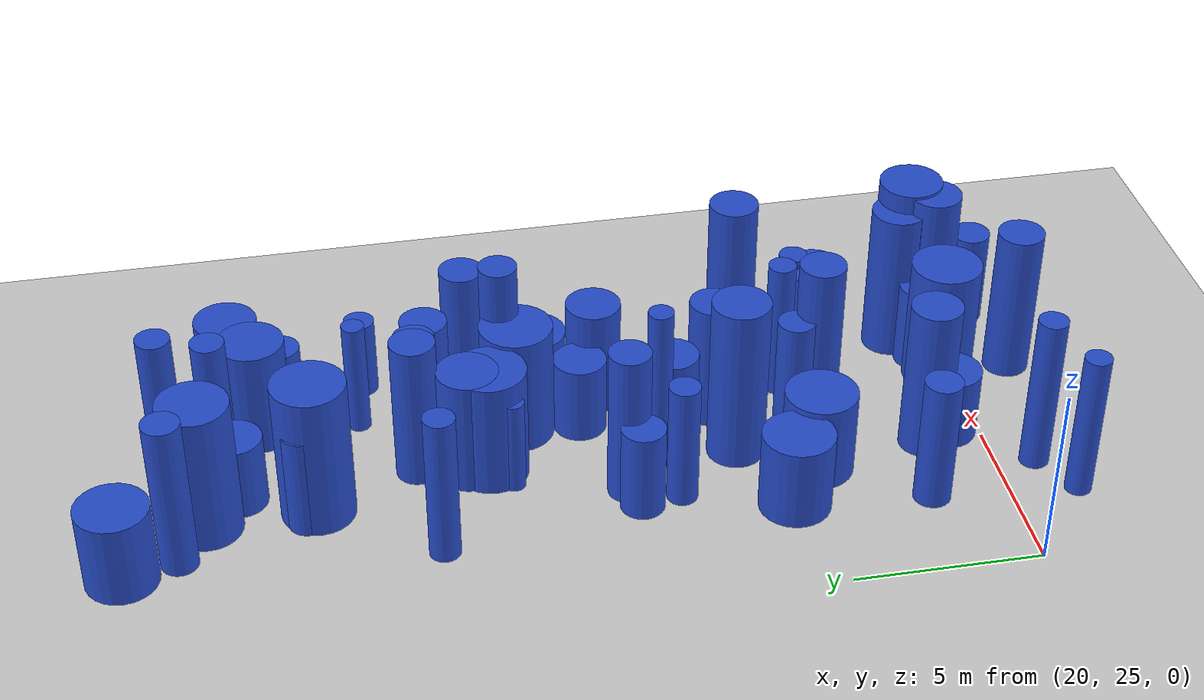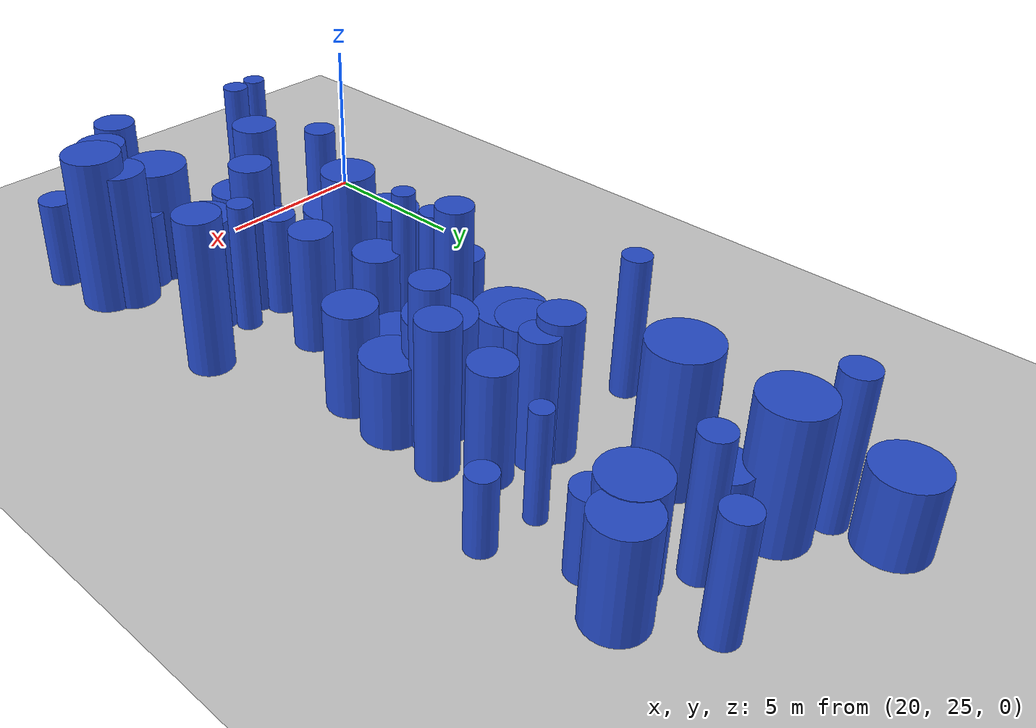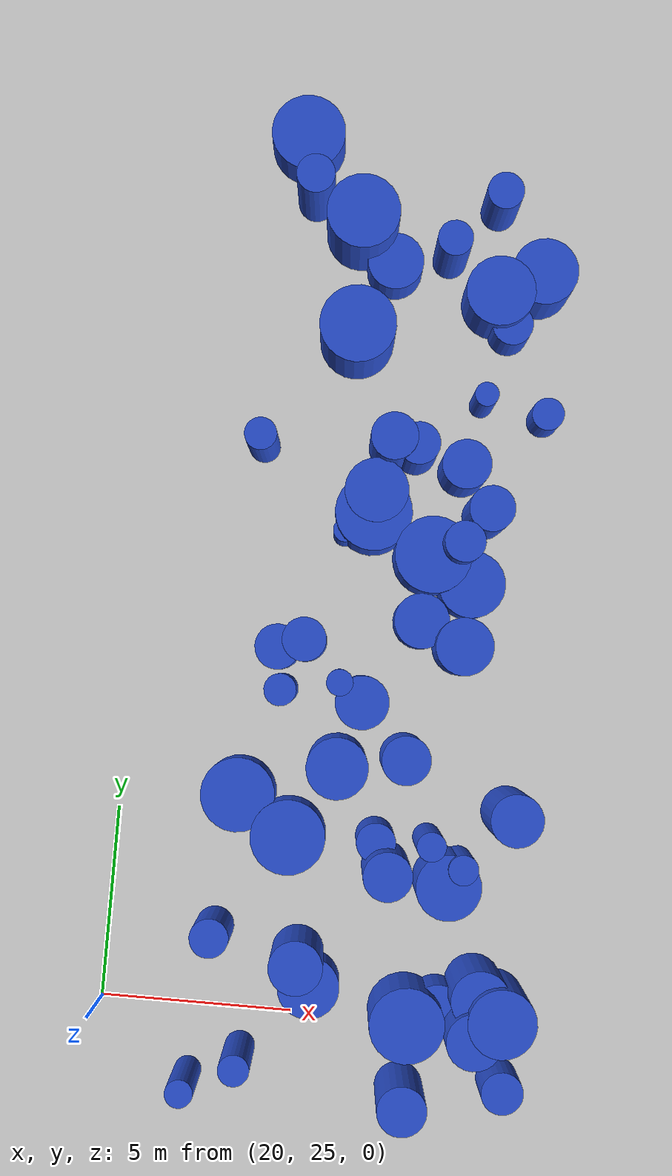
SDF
<sdf version="1.6">
 <world name="default">
  <model name="ground_plane">
   <static>1</static>
   <link name="link">
    <collision name="collision">
     <geometry><plane><normal>0 0 1</normal><size>100 100</size></plane></geometry>
     <surface><friction><ode><mu>100</mu><mu2>50</mu2></ode></friction></surface>
    </collision>
    <visual name="visual">
     <cast_shadows>0</cast_shadows>
     <geometry><plane><normal>0 0 1</normal><size>100 100</size></plane></geometry>
     <material>
      <script><uri>file://media/materials/scripts/gazebo.material</uri><name>Gazebo/Grey</name></script>
     </material>
    </visual>
   </link>
  </model>
  <model name="21">
   <static>0</static>
   <link name="link">
    <inertial>
     <mass>2</mass>
     <inertia><ixx>1.37016</ixx><ixy>0</ixy><ixz>0</ixz><iyy>1.37016</iyy><iyz>0</iyz><izz>0.921566</izz></inertia>
    </inertial>
    <collision name="collision">
     <geometry><cylinder><length>2.33587</length><radius>0.959982</radius></cylinder></geometry>
     <surface><contact><collide_without_contact>1</collide_without_contact></contact></surface>
    </collision>
    <visual name="visual">
     <geometry><cylinder><length>2.33587</length><radius>0.959982</radius></cylinder></geometry>
     <material>
      <script><uri>file://media/materials/scripts/gazebo.material</uri><name>Gazebo/Blue</name></script>
     </material>
    </visual>
    <gravity>0</gravity>
   </link>
   <pose>23.4785 47.9749 1.16793 0 -0 0</pose>
  </model>
  <model name="25">
   <static>0</static>
   <link name="link">
    <inertial>
     <mass>2</mass>
     <inertia><ixx>1.51438</ixx><ixy>0</ixy><ixz>0</ixz><iyy>1.51438</iyy><iyz>0</iyz><izz>0.951451</izz></inertia>
    </inertial>
    <collision name="collision">
     <geometry><cylinder><length>2.49638</length><radius>0.975423</radius></cylinder></geometry>
     <surface><contact><collide_without_contact>1</collide_without_contact></contact></surface>
    </collision>
    <visual name="visual">
     <geometry><cylinder><length>2.49638</length><radius>0.975423</radius></cylinder></geometry>
     <material>
      <script><uri>file://media/materials/scripts/gazebo.material</uri><name>Gazebo/Blue</name></script>
     </material>
    </visual>
    <gravity>0</gravity>
   </link>
   <pose>24.5529 29.7279 1.24819 0 -0 0</pose>
  </model>
  <model name="55">
   <static>0</static>
   <link name="link">
    <inertial>
     <mass>2</mass>
     <inertia><ixx>4.17613</ixx><ixy>0</ixy><ixz>0</ixz><iyy>4.17613</iyy><iyz>0</iyz><izz>0.615115</izz></inertia>
    </inertial>
    <collision name="collision">
     <geometry><cylinder><length>4.81782</length><radius>0.784293</radius></cylinder></geometry>
     <surface><contact><collide_without_contact>1</collide_without_contact></contact></surface>
    </collision>
    <visual name="visual">
     <geometry><cylinder><length>4.81782</length><radius>0.784293</radius></cylinder></geometry>
     <material>
      <script><uri>file://media/materials/scripts/gazebo.material</uri><name>Gazebo/Blue</name></script>
     </material>
    </visual>
    <gravity>0</gravity>
   </link>
   <pose>25.66 31.6904 2.40891 0 -0 0</pose>
  </model>
  <model name="64">
   <static>0</static>
   <link name="link">
    <inertial>
     <mass>2</mass>
     <inertia><ixx>2.8151</ixx><ixy>0</ixy><ixz>0</ixz><iyy>2.8151</iyy><iyz>0</iyz><izz>0.143102</izz></inertia>
    </inertial>
    <collision name="collision">
     <geometry><cylinder><length>4.05725</length><radius>0.378289</radius></cylinder></geometry>
     <surface><contact><collide_without_contact>1</collide_without_contact></contact></surface>
    </collision>
    <visual name="visual">
     <geometry><cylinder><length>4.05725</length><radius>0.378289</radius></cylinder></geometry>
     <material>
      <script><uri>file://media/materials/scripts/gazebo.material</uri><name>Gazebo/Blue</name></script>
     </material>
    </visual>
    <gravity>0</gravity>
   </link>
   <pose>28.212 29.9112 2.02863 0 -0 0</pose>
  </model>
  <model name="66">
   <static>0</static>
   <link name="link">
    <inertial>
     <mass>2</mass>
     <inertia><ixx>1.02189</ixx><ixy>0</ixy><ixz>0</ixz><iyy>1.02189</iyy><iyz>0</iyz><izz>0.655979</izz></inertia>
    </inertial>
    <collision name="collision">
     <geometry><cylinder><length>2.04044</length><radius>0.809925</radius></cylinder></geometry>
     <surface><contact><collide_without_contact>1</collide_without_contact></contact></surface>
    </collision>
    <visual name="visual">
     <geometry><cylinder><length>2.04044</length><radius>0.809925</radius></cylinder></geometry>
     <material>
      <script><uri>file://media/materials/scripts/gazebo.material</uri><name>Gazebo/Blue</name></script>
     </material>
    </visual>
    <gravity>0</gravity>
   </link>
   <pose>25.4223 25.8703 1.02022 0 -0 0</pose>
  </model>
  <model name="85">
   <static>0</static>
   <link name="link">
    <inertial>
     <mass>2</mass>
     <inertia>
      <ixx>1.86972</ixx>
      <ixy>0</ixy>
      <ixz>0</ixz>
      <iyy>1.86972</iyy>
      <iyz>0</iyz>
      <izz>0.0966798</izz>
     </inertia>
    </inertial>
    <collision name="collision">
     <geometry><cylinder><length>3.3058</length><radius>0.310934</radius></cylinder></geometry>
     <surface><contact><collide_without_contact>1</collide_without_contact></contact></surface>
    </collision>
    <visual name="visual">
     <geometry><cylinder><length>3.3058</length><radius>0.310934</radius></cylinder></geometry>
     <material>
      <script><uri>file://media/materials/scripts/gazebo.material</uri><name>Gazebo/Blue</name></script>
     </material>
    </visual>
    <gravity>0</gravity>
   </link>
   <pose>28.6384 41.4906 1.6529 0 -0 0</pose>
  </model>
  <model name="95">
   <static>0</static>
   <link name="link">
    <inertial>
     <mass>2</mass>
     <inertia><ixx>2.47451</ixx><ixy>0</ixy><ixz>0</ixz><iyy>2.47451</iyy><iyz>0</iyz><izz>0.401663</izz></inertia>
    </inertial>
    <collision name="collision">
     <geometry><cylinder><length>3.69352</length><radius>0.633769</radius></cylinder></geometry>
     <surface><contact><collide_without_contact>1</collide_without_contact></contact></surface>
    </collision>
    <visual name="visual">
     <geometry><cylinder><length>3.69352</length><radius>0.633769</radius></cylinder></geometry>
     <material>
      <script><uri>file://media/materials/scripts/gazebo.material</uri><name>Gazebo/Blue</name></script>
     </material>
    </visual>
    <gravity>0</gravity>
   </link>
   <pose>27.3993 32.0026 1.84676 0 -0 0</pose>
  </model>
  <model name="106">
   <static>0</static>
   <link name="link">
    <inertial>
     <mass>2</mass>
     <inertia>
      <ixx>0.993795</ixx>
      <ixy>0</ixy>
      <ixz>0</ixz>
      <iyy>0.993795</iyy>
      <iyz>0</iyz>
      <izz>0.535532</izz>
     </inertia>
    </inertial>
    <collision name="collision">
     <geometry><cylinder><length>2.08715</length><radius>0.7318</radius></cylinder></geometry>
     <surface><contact><collide_without_contact>1</collide_without_contact></contact></surface>
    </collision>
    <visual name="visual">
     <geometry><cylinder><length>2.08715</length><radius>0.7318</radius></cylinder></geometry>
     <material>
      <script><uri>file://media/materials/scripts/gazebo.material</uri><name>Gazebo/Blue</name></script>
     </material>
    </visual>
    <gravity>0</gravity>
   </link>
   <pose>26.0287 44.8688 1.04357 0 -0 0</pose>
  </model>
  <model name="108">
   <static>0</static>
   <link name="link">
    <inertial>
     <mass>2</mass>
     <inertia>
      <ixx>1.28147</ixx>
      <ixy>0</ixy>
      <ixz>0</ixz>
      <iyy>1.28147</iyy>
      <iyz>0</iyz>
      <izz>0.0907902</izz>
     </inertia>
    </inertial>
    <collision name="collision">
     <geometry><cylinder><length>2.72332</length><radius>0.301314</radius></cylinder></geometry>
     <surface><contact><collide_without_contact>1</collide_without_contact></contact></surface>
    </collision>
    <visual name="visual">
     <geometry><cylinder><length>2.72332</length><radius>0.301314</radius></cylinder></geometry>
     <material>
      <script><uri>file://media/materials/scripts/gazebo.material</uri><name>Gazebo/Blue</name></script>
     </material>
    </visual>
    <gravity>0</gravity>
   </link>
   <pose>25.325 37.7395 1.36166 0 -0 0</pose>
  </model>
  <model name="114">
   <static>0</static>
   <link name="link">
    <inertial>
     <mass>2</mass>
     <inertia><ixx>1.57724</ixx><ixy>0</ixy><ixz>0</ixz><iyy>1.57724</iyy><iyz>0</iyz><izz>0.280383</izz></inertia>
    </inertial>
    <collision name="collision">
     <geometry><cylinder><length>2.93637</length><radius>0.529512</radius></cylinder></geometry>
     <surface><contact><collide_without_contact>1</collide_without_contact></contact></surface>
    </collision>
    <visual name="visual">
     <geometry><cylinder><length>2.93637</length><radius>0.529512</radius></cylinder></geometry>
     <material>
      <script><uri>file://media/materials/scripts/gazebo.material</uri><name>Gazebo/Blue</name></script>
     </material>
    </visual>
    <gravity>0</gravity>
   </link>
   <pose>24.7838 43.2077 1.46819 0 -0 0</pose>
  </model>
  <model name="123">
   <static>0</static>
   <link name="link">
    <inertial>
     <mass>2</mass>
     <inertia><ixx>1.32575</ixx><ixy>0</ixy><ixz>0</ixz><iyy>1.32575</iyy><iyz>0</iyz><izz>0.100826</izz></inertia>
    </inertial>
    <collision name="collision">
     <geometry><cylinder><length>2.76623</length><radius>0.317531</radius></cylinder></geometry>
     <surface><contact><collide_without_contact>1</collide_without_contact></contact></surface>
    </collision>
    <visual name="visual">
     <geometry><cylinder><length>2.76623</length><radius>0.317531</radius></cylinder></geometry>
     <material>
      <script><uri>file://media/materials/scripts/gazebo.material</uri><name>Gazebo/Blue</name></script>
     </material>
    </visual>
    <gravity>0</gravity>
   </link>
   <pose>30.0622 44.5417 1.38311 0 -0 0</pose>
  </model>
  <model name="130">
   <static>0</static>
   <link name="link">
    <inertial>
     <mass>2</mass>
     <inertia><ixx>1.91312</ixx><ixy>0</ixy><ixz>0</ixz><iyy>1.91312</iyy><iyz>0</iyz><izz>0.722179</izz></inertia>
    </inertial>
    <collision name="collision">
     <geometry><cylinder><length>3.05159</length><radius>0.849811</radius></cylinder></geometry>
     <surface><contact><collide_without_contact>1</collide_without_contact></contact></surface>
    </collision>
    <visual name="visual">
     <geometry><cylinder><length>3.05159</length><radius>0.849811</radius></cylinder></geometry>
     <material>
      <script><uri>file://media/materials/scripts/gazebo.material</uri><name>Gazebo/Blue</name></script>
     </material>
    </visual>
    <gravity>0</gravity>
   </link>
   <pose>29.8732 44.7938 1.52579 0 -0 0</pose>
  </model>
  <model name="133">
   <static>0</static>
   <link name="link">
    <inertial>
     <mass>2</mass>
     <inertia><ixx>4.12807</ixx><ixy>0</ixy><ixz>0</ixz><iyy>4.12807</iyy><iyz>0</iyz><izz>0.452345</izz></inertia>
    </inertial>
    <collision name="collision">
     <geometry><cylinder><length>4.83853</length><radius>0.672566</radius></cylinder></geometry>
     <surface><contact><collide_without_contact>1</collide_without_contact></contact></surface>
    </collision>
    <visual name="visual">
     <geometry><cylinder><length>4.83853</length><radius>0.672566</radius></cylinder></geometry>
     <material>
      <script><uri>file://media/materials/scripts/gazebo.material</uri><name>Gazebo/Blue</name></script>
     </material>
    </visual>
    <gravity>0</gravity>
   </link>
   <pose>30.2526 30.7888 2.41927 0 -0 0</pose>
  </model>
  <model name="137">
   <static>0</static>
   <link name="link">
    <inertial>
     <mass>2</mass>
     <inertia><ixx>1.36924</ixx><ixy>0</ixy><ixz>0</ixz><iyy>1.36924</iyy><iyz>0</iyz><izz>0.930817</izz></inertia>
    </inertial>
    <collision name="collision">
     <geometry><cylinder><length>2.32873</length><radius>0.964788</radius></cylinder></geometry>
     <surface><contact><collide_without_contact>1</collide_without_contact></contact></surface>
    </collision>
    <visual name="visual">
     <geometry><cylinder><length>2.32873</length><radius>0.964788</radius></cylinder></geometry>
     <material>
      <script><uri>file://media/materials/scripts/gazebo.material</uri><name>Gazebo/Blue</name></script>
     </material>
    </visual>
    <gravity>0</gravity>
   </link>
   <pose>23.1649 30.7007 1.16436 0 -0 0</pose>
  </model>
  <model name="149">
   <static>0</static>
   <link name="link">
    <inertial>
     <mass>2</mass>
     <inertia><ixx>1.45954</ixx><ixy>0</ixy><ixz>0</ixz><iyy>1.45954</iyy><iyz>0</iyz><izz>0.299824</izz></inertia>
    </inertial>
    <collision name="collision">
     <geometry><cylinder><length>2.80317</length><radius>0.547562</radius></cylinder></geometry>
     <surface><contact><collide_without_contact>1</collide_without_contact></contact></surface>
    </collision>
    <visual name="visual">
     <geometry><cylinder><length>2.80317</length><radius>0.547562</radius></cylinder></geometry>
     <material>
      <script><uri>file://media/materials/scripts/gazebo.material</uri><name>Gazebo/Blue</name></script>
     </material>
    </visual>
    <gravity>0</gravity>
   </link>
   <pose>30.6104 23.7122 1.40159 0 -0 0</pose>
  </model>
  <model name="159">
   <static>0</static>
   <link name="link">
    <inertial>
     <mass>2</mass>
     <inertia><ixx>2.43882</ixx><ixy>0</ixy><ixz>0</ixz><iyy>2.43882</iyy><iyz>0</iyz><izz>0.1512</izz></inertia>
    </inertial>
    <collision name="collision">
     <geometry><cylinder><length>3.76554</length><radius>0.388845</radius></cylinder></geometry>
     <surface><contact><collide_without_contact>1</collide_without_contact></contact></surface>
    </collision>
    <visual name="visual">
     <geometry><cylinder><length>3.76554</length><radius>0.388845</radius></cylinder></geometry>
     <material>
      <script><uri>file://media/materials/scripts/gazebo.material</uri><name>Gazebo/Blue</name></script>
     </material>
    </visual>
    <gravity>0</gravity>
   </link>
   <pose>29.0799 29.3754 1.88277 0 -0 0</pose>
  </model>
  <model name="167">
   <static>0</static>
   <link name="link">
    <inertial>
     <mass>2</mass>
     <inertia><ixx>3.48287</ixx><ixy>0</ixy><ixz>0</ixz><iyy>3.48287</iyy><iyz>0</iyz><izz>0.574852</izz></inertia>
    </inertial>
    <collision name="collision">
     <geometry><cylinder><length>4.37866</length><radius>0.75819</radius></cylinder></geometry>
     <surface><contact><collide_without_contact>1</collide_without_contact></contact></surface>
    </collision>
    <visual name="visual">
     <geometry><cylinder><length>4.37866</length><radius>0.75819</radius></cylinder></geometry>
     <material>
      <script><uri>file://media/materials/scripts/gazebo.material</uri><name>Gazebo/Blue</name></script>
     </material>
    </visual>
    <gravity>0</gravity>
   </link>
   <pose>29.7614 26.1951 2.18933 0 -0 0</pose>
  </model>
  <model name="175">
   <static>0</static>
   <link name="link">
    <inertial>
     <mass>2</mass>
     <inertia><ixx>3.17287</ixx><ixy>0</ixy><ixz>0</ixz><iyy>3.17287</iyy><iyz>0</iyz><izz>0.172019</izz></inertia>
    </inertial>
    <collision name="collision">
     <geometry><cylinder><length>4.30362</length><radius>0.414752</radius></cylinder></geometry>
     <surface><contact><collide_without_contact>1</collide_without_contact></contact></surface>
    </collision>
    <visual name="visual">
     <geometry><cylinder><length>4.30362</length><radius>0.414752</radius></cylinder></geometry>
     <material>
      <script><uri>file://media/materials/scripts/gazebo.material</uri><name>Gazebo/Blue</name></script>
     </material>
    </visual>
    <gravity>0</gravity>
   </link>
   <pose>23.0002 39.8961 2.15181 0 -0 0</pose>
  </model>
  <model name="186">
   <static>0</static>
   <link name="link">
    <inertial>
     <mass>2</mass>
     <inertia><ixx>3.12612</ixx><ixy>0</ixy><ixz>0</ixz><iyy>3.12612</iyy><iyz>0</iyz><izz>0.367163</izz></inertia>
    </inertial>
    <collision name="collision">
     <geometry><cylinder><length>4.20181</length><radius>0.60594</radius></cylinder></geometry>
     <surface><contact><collide_without_contact>1</collide_without_contact></contact></surface>
    </collision>
    <visual name="visual">
     <geometry><cylinder><length>4.20181</length><radius>0.60594</radius></cylinder></geometry>
     <material>
      <script><uri>file://media/materials/scripts/gazebo.material</uri><name>Gazebo/Blue</name></script>
     </material>
    </visual>
    <gravity>0</gravity>
   </link>
   <pose>26.3735 40.1477 2.10091 0 -0 0</pose>
  </model>
  <model name="190">
   <static>0</static>
   <link name="link">
    <inertial>
     <mass>2</mass>
     <inertia><ixx>2.68984</ixx><ixy>0</ixy><ixz>0</ixz><iyy>2.68984</iyy><iyz>0</iyz><izz>0.935713</izz></inertia>
    </inertial>
    <collision name="collision">
     <geometry><cylinder><length>3.65129</length><radius>0.967323</radius></cylinder></geometry>
     <surface><contact><collide_without_contact>1</collide_without_contact></contact></surface>
    </collision>
    <visual name="visual">
     <geometry><cylinder><length>3.65129</length><radius>0.967323</radius></cylinder></geometry>
     <material>
      <script><uri>file://media/materials/scripts/gazebo.material</uri><name>Gazebo/Blue</name></script>
     </material>
    </visual>
    <gravity>0</gravity>
   </link>
   <pose>27.9962 25.325 1.82564 0 -0 0</pose>
  </model>
  <model name="199">
   <static>0</static>
   <link name="link">
    <inertial>
     <mass>2</mass>
     <inertia><ixx>1.16728</ixx><ixy>0</ixy><ixz>0</ixz><iyy>1.16728</iyy><iyz>0</iyz><izz>0.28283</izz></inertia>
    </inertial>
    <collision name="collision">
     <geometry><cylinder><length>2.48097</length><radius>0.531818</radius></cylinder></geometry>
     <surface><contact><collide_without_contact>1</collide_without_contact></contact></surface>
    </collision>
    <visual name="visual">
     <geometry><cylinder><length>2.48097</length><radius>0.531818</radius></cylinder></geometry>
     <material>
      <script><uri>file://media/materials/scripts/gazebo.material</uri><name>Gazebo/Blue</name></script>
     </material>
    </visual>
    <gravity>0</gravity>
   </link>
   <pose>29.1826 43.4357 1.24049 0 -0 0</pose>
  </model>
  <model name="200">
   <static>0</static>
   <link name="link">
    <inertial>
     <mass>2</mass>
     <inertia><ixx>3.54077</ixx><ixy>0</ixy><ixz>0</ixz><iyy>3.54077</iyy><iyz>0</iyz><izz>0.159574</izz></inertia>
    </inertial>
    <collision name="collision">
     <geometry><cylinder><length>4.55696</length><radius>0.399468</radius></cylinder></geometry>
     <surface><contact><collide_without_contact>1</collide_without_contact></contact></surface>
    </collision>
    <visual name="visual">
     <geometry><cylinder><length>4.55696</length><radius>0.399468</radius></cylinder></geometry>
     <material>
      <script><uri>file://media/materials/scripts/gazebo.material</uri><name>Gazebo/Blue</name></script>
     </material>
    </visual>
    <gravity>0</gravity>
   </link>
   <pose>23.746 23.9561 2.27848 0 -0 0</pose>
  </model>
  <model name="201">
   <static>0</static>
   <link name="link">
    <inertial>
     <mass>2</mass>
     <inertia><ixx>2.68649</ixx><ixy>0</ixy><ixz>0</ixz><iyy>2.68649</iyy><iyz>0</iyz><izz>0.295944</izz></inertia>
    </inertial>
    <collision name="collision">
     <geometry><cylinder><length>3.90271</length><radius>0.544008</radius></cylinder></geometry>
     <surface><contact><collide_without_contact>1</collide_without_contact></contact></surface>
    </collision>
    <visual name="visual">
     <geometry><cylinder><length>3.90271</length><radius>0.544008</radius></cylinder></geometry>
     <material>
      <script><uri>file://media/materials/scripts/gazebo.material</uri><name>Gazebo/Blue</name></script>
     </material>
    </visual>
    <gravity>0</gravity>
   </link>
   <pose>27.0133 40.0464 1.95135 0 -0 0</pose>
  </model>
  <model name="207">
   <static>0</static>
   <link name="link">
    <inertial>
     <mass>2</mass>
     <inertia><ixx>2.90928</ixx><ixy>0</ixy><ixz>0</ixz><iyy>2.90928</iyy><iyz>0</iyz><izz>0.20415</izz></inertia>
    </inertial>
    <collision name="collision">
     <geometry><cylinder><length>4.10405</length><radius>0.451829</radius></cylinder></geometry>
     <surface><contact><collide_without_contact>1</collide_without_contact></contact></surface>
    </collision>
    <visual name="visual">
     <geometry><cylinder><length>4.10405</length><radius>0.451829</radius></cylinder></geometry>
     <material>
      <script><uri>file://media/materials/scripts/gazebo.material</uri><name>Gazebo/Blue</name></script>
     </material>
    </visual>
    <gravity>0</gravity>
   </link>
   <pose>27.4689 45.2796 2.05203 0 -0 0</pose>
  </model>
  <model name="211">
   <static>0</static>
   <link name="link">
    <inertial>
     <mass>2</mass>
     <inertia><ixx>3.81856</ixx><ixy>0</ixy><ixz>0</ixz><iyy>3.81856</iyy><iyz>0</iyz><izz>0.395372</izz></inertia>
    </inertial>
    <collision name="collision">
     <geometry><cylinder><length>4.66103</length><radius>0.628786</radius></cylinder></geometry>
     <surface><contact><collide_without_contact>1</collide_without_contact></contact></surface>
    </collision>
    <visual name="visual">
     <geometry><cylinder><length>4.66103</length><radius>0.628786</radius></cylinder></geometry>
     <material>
      <script><uri>file://media/materials/scripts/gazebo.material</uri><name>Gazebo/Blue</name></script>
     </material>
    </visual>
    <gravity>0</gravity>
   </link>
   <pose>27.1622 29.1034 2.33052 0 -0 0</pose>
  </model>
  <model name="214">
   <static>0</static>
   <link name="link">
    <inertial>
     <mass>2</mass>
     <inertia><ixx>3.04391</ixx><ixy>0</ixy><ixz>0</ixz><iyy>3.04391</iyy><iyz>0</iyz><izz>0.129529</izz></inertia>
    </inertial>
    <collision name="collision">
     <geometry><cylinder><length>4.22787</length><radius>0.359902</radius></cylinder></geometry>
     <surface><contact><collide_without_contact>1</collide_without_contact></contact></surface>
    </collision>
    <visual name="visual">
     <geometry><cylinder><length>4.22787</length><radius>0.359902</radius></cylinder></geometry>
     <material>
      <script><uri>file://media/materials/scripts/gazebo.material</uri><name>Gazebo/Blue</name></script>
     </material>
    </visual>
    <gravity>0</gravity>
   </link>
   <pose>22.4227 23.2098 2.11393 0 -0 0</pose>
  </model>
  <model name="240">
   <static>0</static>
   <link name="link">
    <inertial>
     <mass>2</mass>
     <inertia><ixx>1.95595</ixx><ixy>0</ixy><ixz>0</ixz><iyy>1.95595</iyy><iyz>0</iyz><izz>0.562265</izz></inertia>
    </inertial>
    <collision name="collision">
     <geometry><cylinder><length>3.17</length><radius>0.749843</radius></cylinder></geometry>
     <surface><contact><collide_without_contact>1</collide_without_contact></contact></surface>
    </collision>
    <visual name="visual">
     <geometry><cylinder><length>3.17</length><radius>0.749843</radius></cylinder></geometry>
     <material>
      <script><uri>file://media/materials/scripts/gazebo.material</uri><name>Gazebo/Blue</name></script>
     </material>
    </visual>
    <gravity>0</gravity>
   </link>
   <pose>28.6471 35.0172 1.585 0 -0 0</pose>
  </model>
  <model name="258">
   <static>0</static>
   <link name="link">
    <inertial>
     <mass>2</mass>
     <inertia><ixx>3.33762</ixx><ixy>0</ixy><ixz>0</ixz><iyy>3.33762</iyy><iyz>0</iyz><izz>0.963038</izz></inertia>
    </inertial>
    <collision name="collision">
     <geometry><cylinder><length>4.13964</length><radius>0.981345</radius></cylinder></geometry>
     <surface><contact><collide_without_contact>1</collide_without_contact></contact></surface>
    </collision>
    <visual name="visual">
     <geometry><cylinder><length>4.13964</length><radius>0.981345</radius></cylinder></geometry>
     <material>
      <script><uri>file://media/materials/scripts/gazebo.material</uri><name>Gazebo/Blue</name></script>
     </material>
    </visual>
    <gravity>0</gravity>
   </link>
   <pose>25.1993 42.9027 2.06982 0 -0 0</pose>
  </model>
  <model name="270">
   <static>0</static>
   <link name="link">
    <inertial>
     <mass>2</mass>
     <inertia><ixx>3.52624</ixx><ixy>0</ixy><ixz>0</ixz><iyy>3.52624</iyy><iyz>0</iyz><izz>0.341709</izz></inertia>
    </inertial>
    <collision name="collision">
     <geometry><cylinder><length>4.4869</length><radius>0.584558</radius></cylinder></geometry>
     <surface><contact><collide_without_contact>1</collide_without_contact></contact></surface>
    </collision>
    <visual name="visual">
     <geometry><cylinder><length>4.4869</length><radius>0.584558</radius></cylinder></geometry>
     <material>
      <script><uri>file://media/materials/scripts/gazebo.material</uri><name>Gazebo/Blue</name></script>
     </material>
    </visual>
    <gravity>0</gravity>
   </link>
   <pose>28.9728 38.5213 2.24345 0 -0 0</pose>
  </model>
  <model name="273">
   <static>0</static>
   <link name="link">
    <inertial>
     <mass>2</mass>
     <inertia><ixx>2.45136</ixx><ixy>0</ixy><ixz>0</ixz><iyy>2.45136</iyy><iyz>0</iyz><izz>0.252617</izz></inertia>
    </inertial>
    <collision name="collision">
     <geometry><cylinder><length>3.73501</length><radius>0.50261</radius></cylinder></geometry>
     <surface><contact><collide_without_contact>1</collide_without_contact></contact></surface>
    </collision>
    <visual name="visual">
     <geometry><cylinder><length>3.73501</length><radius>0.50261</radius></cylinder></geometry>
     <material>
      <script><uri>file://media/materials/scripts/gazebo.material</uri><name>Gazebo/Blue</name></script>
     </material>
    </visual>
    <gravity>0</gravity>
   </link>
   <pose>22.8097 27.0922 1.86751 0 -0 0</pose>
  </model>
  <model name="281">
   <static>0</static>
   <link name="link">
    <inertial>
     <mass>2</mass>
     <inertia><ixx>1.80098</ixx><ixy>0</ixy><ixz>0</ixz><iyy>1.80098</iyy><iyz>0</iyz><izz>0.486804</izz></inertia>
    </inertial>
    <collision name="collision">
     <geometry><cylinder><length>3.05703</length><radius>0.697713</radius></cylinder></geometry>
     <surface><contact><collide_without_contact>1</collide_without_contact></contact></surface>
    </collision>
    <visual name="visual">
     <geometry><cylinder><length>3.05703</length><radius>0.697713</radius></cylinder></geometry>
     <material>
      <script><uri>file://media/materials/scripts/gazebo.material</uri><name>Gazebo/Blue</name></script>
     </material>
    </visual>
    <gravity>0</gravity>
   </link>
   <pose>26.1559 33.3583 1.52852 0 -0 0</pose>
  </model>
  <model name="287">
   <static>0</static>
   <link name="link">
    <inertial>
     <mass>2</mass>
     <inertia><ixx>4.17914</ixx><ixy>0</ixy><ixz>0</ixz><iyy>4.17914</iyy><iyz>0</iyz><izz>0.512986</izz></inertia>
    </inertial>
    <collision name="collision">
     <geometry><cylinder><length>4.85138</length><radius>0.716231</radius></cylinder></geometry>
     <surface><contact><collide_without_contact>1</collide_without_contact></contact></surface>
    </collision>
    <visual name="visual">
     <geometry><cylinder><length>4.85138</length><radius>0.716231</radius></cylinder></geometry>
     <material>
      <script><uri>file://media/materials/scripts/gazebo.material</uri><name>Gazebo/Blue</name></script>
     </material>
    </visual>
    <gravity>0</gravity>
   </link>
   <pose>29.6662 25.2203 2.42569 0 -0 0</pose>
  </model>
  <model name="289">
   <static>0</static>
   <link name="link">
    <inertial>
     <mass>2</mass>
     <inertia><ixx>1.20949</ixx><ixy>0</ixy><ixz>0</ixz><iyy>1.20949</iyy><iyz>0</iyz><izz>0.402393</izz></inertia>
    </inertial>
    <collision name="collision">
     <geometry><cylinder><length>2.45962</length><radius>0.634344</radius></cylinder></geometry>
     <surface><contact><collide_without_contact>1</collide_without_contact></contact></surface>
    </collision>
    <visual name="visual">
     <geometry><cylinder><length>2.45962</length><radius>0.634344</radius></cylinder></geometry>
     <material>
      <script><uri>file://media/materials/scripts/gazebo.material</uri><name>Gazebo/Blue</name></script>
     </material>
    </visual>
    <gravity>0</gravity>
   </link>
   <pose>28.798 25.6737 1.22981 0 -0 0</pose>
  </model>
  <model name="295">
   <static>0</static>
   <link name="link">
    <inertial>
     <mass>2</mass>
     <inertia><ixx>4.43998</ixx><ixy>0</ixy><ixz>0</ixz><iyy>4.43998</iyy><iyz>0</iyz><izz>0.761455</izz></inertia>
    </inertial>
    <collision name="collision">
     <geometry><cylinder><length>4.93513</length><radius>0.872614</radius></cylinder></geometry>
     <surface><contact><collide_without_contact>1</collide_without_contact></contact></surface>
    </collision>
    <visual name="visual">
     <geometry><cylinder><length>4.93513</length><radius>0.872614</radius></cylinder></geometry>
     <material>
      <script><uri>file://media/materials/scripts/gazebo.material</uri><name>Gazebo/Blue</name></script>
     </material>
    </visual>
    <gravity>0</gravity>
   </link>
   <pose>30.3152 25.7371 2.46756 0 -0 0</pose>
  </model>
  <model name="296">
   <static>0</static>
   <link name="link">
    <inertial>
     <mass>2</mass>
     <inertia><ixx>1.79355</ixx><ixy>0</ixy><ixz>0</ixz><iyy>1.79355</iyy><iyz>0</iyz><izz>0.260188</izz></inertia>
    </inertial>
    <collision name="collision">
     <geometry><cylinder><length>3.15923</length><radius>0.510086</radius></cylinder></geometry>
     <surface><contact><collide_without_contact>1</collide_without_contact></contact></surface>
    </collision>
    <visual name="visual">
     <geometry><cylinder><length>3.15923</length><radius>0.510086</radius></cylinder></geometry>
     <material>
      <script><uri>file://media/materials/scripts/gazebo.material</uri><name>Gazebo/Blue</name></script>
     </material>
    </visual>
    <gravity>0</gravity>
   </link>
   <pose>26.8224 29.833 1.57961 0 -0 0</pose>
  </model>
  <model name="298">
   <static>0</static>
   <link name="link">
    <inertial>
     <mass>2</mass>
     <inertia><ixx>1.08581</ixx><ixy>0</ixy><ixz>0</ixz><iyy>1.08581</iyy><iyz>0</iyz><izz>0.52377</izz></inertia>
    </inertial>
    <collision name="collision">
     <geometry><cylinder><length>2.22341</length><radius>0.72372</radius></cylinder></geometry>
     <surface><contact><collide_without_contact>1</collide_without_contact></contact></surface>
    </collision>
    <visual name="visual">
     <geometry><cylinder><length>2.22341</length><radius>0.72372</radius></cylinder></geometry>
     <material>
      <script><uri>file://media/materials/scripts/gazebo.material</uri><name>Gazebo/Blue</name></script>
     </material>
    </visual>
    <gravity>0</gravity>
   </link>
   <pose>27.5223 35.5926 1.11171 0 -0 0</pose>
  </model>
  <model name="305">
   <static>0</static>
   <link name="link">
    <inertial>
     <mass>2</mass>
     <inertia><ixx>2.20419</ixx><ixy>0</ixy><ixz>0</ixz><iyy>2.20419</iyy><iyz>0</iyz><izz>0.678806</izz></inertia>
    </inertial>
    <collision name="collision">
     <geometry><cylinder><length>3.34495</length><radius>0.823897</radius></cylinder></geometry>
     <surface><contact><collide_without_contact>1</collide_without_contact></contact></surface>
    </collision>
    <visual name="visual">
     <geometry><cylinder><length>3.34495</length><radius>0.823897</radius></cylinder></geometry>
     <material>
      <script><uri>file://media/materials/scripts/gazebo.material</uri><name>Gazebo/Blue</name></script>
     </material>
    </visual>
    <gravity>0</gravity>
   </link>
   <pose>26.0482 38.8044 1.67248 0 -0 0</pose>
  </model>
  <model name="311">
   <static>0</static>
   <link name="link">
    <inertial>
     <mass>2</mass>
     <inertia><ixx>2.41928</ixx><ixy>0</ixy><ixz>0</ixz><iyy>2.41928</iyy><iyz>0</iyz><izz>0.712692</izz></inertia>
    </inertial>
    <collision name="collision">
     <geometry><cylinder><length>3.51818</length><radius>0.844211</radius></cylinder></geometry>
     <surface><contact><collide_without_contact>1</collide_without_contact></contact></surface>
    </collision>
    <visual name="visual">
     <geometry><cylinder><length>3.51818</length><radius>0.844211</radius></cylinder></geometry>
     <material>
      <script><uri>file://media/materials/scripts/gazebo.material</uri><name>Gazebo/Blue</name></script>
     </material>
    </visual>
    <gravity>0</gravity>
   </link>
   <pose>28.755 28.8791 1.75909 0 -0 0</pose>
  </model>
  <model name="312">
   <static>0</static>
   <link name="link">
    <inertial>
     <mass>2</mass>
     <inertia><ixx>1.01878</ixx><ixy>0</ixy><ixz>0</ixz><iyy>1.01878</iyy><iyz>0</iyz><izz>0.176826</izz></inertia>
    </inertial>
    <collision name="collision">
     <geometry><cylinder><length>2.36267</length><radius>0.420507</radius></cylinder></geometry>
     <surface><contact><collide_without_contact>1</collide_without_contact></contact></surface>
    </collision>
    <visual name="visual">
     <geometry><cylinder><length>2.36267</length><radius>0.420507</radius></cylinder></geometry>
     <material>
      <script><uri>file://media/materials/scripts/gazebo.material</uri><name>Gazebo/Blue</name></script>
     </material>
    </visual>
    <gravity>0</gravity>
   </link>
   <pose>28.1835 25.7562 1.18133 0 -0 0</pose>
  </model>
  <model name="316">
   <static>0</static>
   <link name="link">
    <inertial>
     <mass>2</mass>
     <inertia><ixx>3.12839</ixx><ixy>0</ixy><ixz>0</ixz><iyy>3.12839</iyy><iyz>0</iyz><izz>0.890417</izz></inertia>
    </inertial>
    <collision name="collision">
     <geometry><cylinder><length>4.01236</length><radius>0.943619</radius></cylinder></geometry>
     <surface><contact><collide_without_contact>1</collide_without_contact></contact></surface>
    </collision>
    <visual name="visual">
     <geometry><cylinder><length>4.01236</length><radius>0.943619</radius></cylinder></geometry>
     <material>
      <script><uri>file://media/materials/scripts/gazebo.material</uri><name>Gazebo/Blue</name></script>
     </material>
    </visual>
    <gravity>0</gravity>
   </link>
   <pose>25.0881 45.778 2.00618 0 -0 0</pose>
  </model>
  <model name="317">
   <static>0</static>
   <link name="link">
    <inertial>
     <mass>2</mass>
     <inertia><ixx>3.43815</ixx><ixy>0</ixy><ixz>0</ixz><iyy>3.43815</iyy><iyz>0</iyz><izz>0.405968</izz></inertia>
    </inertial>
    <collision name="collision">
     <geometry><cylinder><length>4.40579</length><radius>0.637156</radius></cylinder></geometry>
     <surface><contact><collide_without_contact>1</collide_without_contact></contact></surface>
    </collision>
    <visual name="visual">
     <geometry><cylinder><length>4.40579</length><radius>0.637156</radius></cylinder></geometry>
     <material>
      <script><uri>file://media/materials/scripts/gazebo.material</uri><name>Gazebo/Blue</name></script>
     </material>
    </visual>
    <gravity>0</gravity>
   </link>
   <pose>28.0301 23.2823 2.20289 0 -0 0</pose>
  </model>
  <model name="323">
   <static>0</static>
   <link name="link">
    <inertial>
     <mass>2</mass>
     <inertia><ixx>3.47106</ixx><ixy>0</ixy><ixz>0</ixz><iyy>3.47106</iyy><iyz>0</iyz><izz>0.315957</izz></inertia>
    </inertial>
    <collision name="collision">
     <geometry><cylinder><length>4.45853</length><radius>0.562101</radius></cylinder></geometry>
     <surface><contact><collide_without_contact>1</collide_without_contact></contact></surface>
    </collision>
    <visual name="visual">
     <geometry><cylinder><length>4.45853</length><radius>0.562101</radius></cylinder></geometry>
     <material>
      <script><uri>file://media/materials/scripts/gazebo.material</uri><name>Gazebo/Blue</name></script>
     </material>
    </visual>
    <gravity>0</gravity>
   </link>
   <pose>24.5537 34.8356 2.22926 0 -0 0</pose>
  </model>
  <model name="325">
   <static>0</static>
   <link name="link">
    <inertial>
     <mass>2</mass>
     <inertia><ixx>1.25438</ixx><ixy>0</ixy><ixz>0</ixz><iyy>1.25438</iyy><iyz>0</iyz><izz>0.349461</izz></inertia>
    </inertial>
    <collision name="collision">
     <geometry><cylinder><length>2.54517</length><radius>0.591153</radius></cylinder></geometry>
     <surface><contact><collide_without_contact>1</collide_without_contact></contact></surface>
    </collision>
    <visual name="visual">
     <geometry><cylinder><length>2.54517</length><radius>0.591153</radius></cylinder></geometry>
     <material>
      <script><uri>file://media/materials/scripts/gazebo.material</uri><name>Gazebo/Blue</name></script>
     </material>
    </visual>
    <gravity>0</gravity>
   </link>
   <pose>23.8595 34.603 1.27258 0 -0 0</pose>
  </model>
  <model name="372">
   <static>0</static>
   <link name="link">
    <inertial>
     <mass>2</mass>
     <inertia><ixx>3.53799</ixx><ixy>0</ixy><ixz>0</ixz><iyy>3.53799</iyy><iyz>0</iyz><izz>0.475169</izz></inertia>
    </inertial>
    <collision name="collision">
     <geometry><cylinder><length>4.44999</length><radius>0.689325</radius></cylinder></geometry>
     <surface><contact><collide_without_contact>1</collide_without_contact></contact></surface>
    </collision>
    <visual name="visual">
     <geometry><cylinder><length>4.44999</length><radius>0.689325</radius></cylinder></geometry>
     <material>
      <script><uri>file://media/materials/scripts/gazebo.material</uri><name>Gazebo/Blue</name></script>
     </material>
    </visual>
    <gravity>0</gravity>
   </link>
   <pose>25.0609 26.6145 2.225 0 -0 0</pose>
  </model>
  <model name="380">
   <static>0</static>
   <link name="link">
    <inertial>
     <mass>2</mass>
     <inertia><ixx>2.20252</ixx><ixy>0</ixy><ixz>0</ixz><iyy>2.20252</iyy><iyz>0</iyz><izz>0.407476</izz></inertia>
    </inertial>
    <collision name="collision">
     <geometry><cylinder><length>3.46305</length><radius>0.638338</radius></cylinder></geometry>
     <surface><contact><collide_without_contact>1</collide_without_contact></contact></surface>
    </collision>
    <visual name="visual">
     <geometry><cylinder><length>3.46305</length><radius>0.638338</radius></cylinder></geometry>
     <material>
      <script><uri>file://media/materials/scripts/gazebo.material</uri><name>Gazebo/Blue</name></script>
     </material>
    </visual>
    <gravity>0</gravity>
   </link>
   <pose>28.281 39.6536 1.73153 0 -0 0</pose>
  </model>
  <model name="391">
   <static>0</static>
   <link name="link">
    <inertial>
     <mass>2</mass>
     <inertia><ixx>1.9754</ixx><ixy>0</ixy><ixz>0</ixz><iyy>1.9754</iyy><iyz>0</iyz><izz>0.805597</izz></inertia>
    </inertial>
    <collision name="collision">
     <geometry><cylinder><length>3.07174</length><radius>0.89755</radius></cylinder></geometry>
     <surface><contact><collide_without_contact>1</collide_without_contact></contact></surface>
    </collision>
    <visual name="visual">
     <geometry><cylinder><length>3.07174</length><radius>0.89755</radius></cylinder></geometry>
     <material>
      <script><uri>file://media/materials/scripts/gazebo.material</uri><name>Gazebo/Blue</name></script>
     </material>
    </visual>
    <gravity>0</gravity>
   </link>
   <pose>28.7794 44.1983 1.53587 0 -0 0</pose>
  </model>
  <model name="401">
   <static>0</static>
   <link name="link">
    <inertial>
     <mass>2</mass>
     <inertia><ixx>4.13202</ixx><ixy>0</ixy><ixz>0</ixz><iyy>4.13202</iyy><iyz>0</iyz><izz>0.270956</izz></inertia>
    </inertial>
    <collision name="collision">
     <geometry><cylinder><length>4.89686</length><radius>0.520535</radius></cylinder></geometry>
     <surface><contact><collide_without_contact>1</collide_without_contact></contact></surface>
    </collision>
    <visual name="visual">
     <geometry><cylinder><length>4.89686</length><radius>0.520535</radius></cylinder></geometry>
     <material>
      <script><uri>file://media/materials/scripts/gazebo.material</uri><name>Gazebo/Blue</name></script>
     </material>
    </visual>
    <gravity>0</gravity>
   </link>
   <pose>28.3525 37.6172 2.44843 0 -0 0</pose>
  </model>
  <model name="413">
   <static>0</static>
   <link name="link">
    <inertial>
     <mass>2</mass>
     <inertia><ixx>2.47118</ixx><ixy>0</ixy><ixz>0</ixz><iyy>2.47118</iyy><iyz>0</iyz><izz>0.97629</izz></inertia>
    </inertial>
    <collision name="collision">
     <geometry><cylinder><length>3.44938</length><radius>0.988074</radius></cylinder></geometry>
     <surface><contact><collide_without_contact>1</collide_without_contact></contact></surface>
    </collision>
    <visual name="visual">
     <geometry><cylinder><length>3.44938</length><radius>0.988074</radius></cylinder></geometry>
     <material>
      <script><uri>file://media/materials/scripts/gazebo.material</uri><name>Gazebo/Blue</name></script>
     </material>
    </visual>
    <gravity>0</gravity>
   </link>
   <pose>27.6302 37.2826 1.72469 0 -0 0</pose>
  </model>
  <model name="429">
   <static>0</static>
   <link name="link">
    <inertial>
     <mass>2</mass>
     <inertia><ixx>3.47183</ixx><ixy>0</ixy><ixz>0</ixz><iyy>3.47183</iyy><iyz>0</iyz><izz>0.242475</izz></inertia>
    </inertial>
    <collision name="collision">
     <geometry><cylinder><length>4.4837</length><radius>0.492418</radius></cylinder></geometry>
     <surface><contact><collide_without_contact>1</collide_without_contact></contact></surface>
    </collision>
    <visual name="visual">
     <geometry><cylinder><length>4.4837</length><radius>0.492418</radius></cylinder></geometry>
     <material>
      <script><uri>file://media/materials/scripts/gazebo.material</uri><name>Gazebo/Blue</name></script>
     </material>
    </visual>
    <gravity>0</gravity>
   </link>
   <pose>23.8086 46.5323 2.24185 0 -0 0</pose>
  </model>
  <model name="453">
   <static>0</static>
   <link name="link">
    <inertial>
     <mass>2</mass>
     <inertia><ixx>2.21972</ixx><ixy>0</ixy><ixz>0</ixz><iyy>2.21972</iyy><iyz>0</iyz><izz>0.173196</izz></inertia>
    </inertial>
    <collision name="collision">
     <geometry><cylinder><length>3.57753</length><radius>0.416169</radius></cylinder></geometry>
     <surface><contact><collide_without_contact>1</collide_without_contact></contact></surface>
    </collision>
    <visual name="visual">
     <geometry><cylinder><length>3.57753</length><radius>0.416169</radius></cylinder></geometry>
     <material>
      <script><uri>file://media/materials/scripts/gazebo.material</uri><name>Gazebo/Blue</name></script>
     </material>
    </visual>
    <gravity>0</gravity>
   </link>
   <pose>24.0426 33.5122 1.78877 0 -0 0</pose>
  </model>
  <model name="457">
   <static>0</static>
   <link name="link">
    <inertial>
     <mass>2</mass>
     <inertia>
      <ixx>0.946261</ixx>
      <ixy>0</ixy>
      <ixz>0</ixz>
      <iyy>0.946261</iyy>
      <iyz>0</iyz>
      <izz>0.178667</izz>
     </inertia>
    </inertial>
    <collision name="collision">
     <geometry><cylinder><length>2.2675</length><radius>0.42269</radius></cylinder></geometry>
     <surface><contact><collide_without_contact>1</collide_without_contact></contact></surface>
    </collision>
    <visual name="visual">
     <geometry><cylinder><length>2.2675</length><radius>0.42269</radius></cylinder></geometry>
     <material>
      <script><uri>file://media/materials/scripts/gazebo.material</uri><name>Gazebo/Blue</name></script>
     </material>
    </visual>
    <gravity>0</gravity>
   </link>
   <pose>30.3102 41.2239 1.13375 0 -0 0</pose>
  </model>
  <model name="466">
   <static>0</static>
   <link name="link">
    <inertial>
     <mass>2</mass>
     <inertia><ixx>2.23118</ixx><ixy>0</ixy><ixz>0</ixz><iyy>2.23118</iyy><iyz>0</iyz><izz>0.222468</izz></inertia>
    </inertial>
    <collision name="collision">
     <geometry><cylinder><length>3.56646</length><radius>0.471665</radius></cylinder></geometry>
     <surface><contact><collide_without_contact>1</collide_without_contact></contact></surface>
    </collision>
    <visual name="visual">
     <geometry><cylinder><length>3.56646</length><radius>0.471665</radius></cylinder></geometry>
     <material>
      <script><uri>file://media/materials/scripts/gazebo.material</uri><name>Gazebo/Blue</name></script>
     </material>
    </visual>
    <gravity>0</gravity>
   </link>
   <pose>28.6576 46.6853 1.78323 0 -0 0</pose>
  </model>
  <model name="467">
   <static>0</static>
   <link name="link">
    <inertial>
     <mass>2</mass>
     <inertia><ixx>1.35875</ixx><ixy>0</ixy><ixz>0</ixz><iyy>1.35875</iyy><iyz>0</iyz><izz>0.753526</izz></inertia>
    </inertial>
    <collision name="collision">
     <geometry><cylinder><length>2.42733</length><radius>0.868059</radius></cylinder></geometry>
     <surface><contact><collide_without_contact>1</collide_without_contact></contact></surface>
    </collision>
    <visual name="visual">
     <geometry><cylinder><length>2.42733</length><radius>0.868059</radius></cylinder></geometry>
     <material>
      <script><uri>file://media/materials/scripts/gazebo.material</uri><name>Gazebo/Blue</name></script>
     </material>
    </visual>
    <gravity>0</gravity>
   </link>
   <pose>28.7231 36.6412 1.21366 0 -0 0</pose>
  </model>
  <model name="469">
   <static>0</static>
   <link name="link">
    <inertial>
     <mass>2</mass>
     <inertia><ixx>2.3481</ixx><ixy>0</ixy><ixz>0</ixz><iyy>2.3481</iyy><iyz>0</iyz><izz>0.98327</izz></inertia>
    </inertial>
    <collision name="collision">
     <geometry><cylinder><length>3.33748</length><radius>0.9916</radius></cylinder></geometry>
     <surface><contact><collide_without_contact>1</collide_without_contact></contact></surface>
    </collision>
    <visual name="visual">
     <geometry><cylinder><length>3.33748</length><radius>0.9916</radius></cylinder></geometry>
     <material>
      <script><uri>file://media/materials/scripts/gazebo.material</uri><name>Gazebo/Blue</name></script>
     </material>
    </visual>
    <gravity>0</gravity>
   </link>
   <pose>26.0223 38.2411 1.66874 0 -0 0</pose>
  </model>
  <model name="477">
   <static>0</static>
   <link name="link">
    <inertial>
     <mass>2</mass>
     <inertia><ixx>3.22474</ixx><ixy>0</ixy><ixz>0</ixz><iyy>3.22474</iyy><iyz>0</iyz><izz>0.277414</izz></inertia>
    </inertial>
    <collision name="collision">
     <geometry><cylinder><length>4.30304</length><radius>0.526701</radius></cylinder></geometry>
     <surface><contact><collide_without_contact>1</collide_without_contact></contact></surface>
    </collision>
    <visual name="visual">
     <geometry><cylinder><length>4.30304</length><radius>0.526701</radius></cylinder></geometry>
     <material>
      <script><uri>file://media/materials/scripts/gazebo.material</uri><name>Gazebo/Blue</name></script>
     </material>
    </visual>
    <gravity>0</gravity>
   </link>
   <pose>29.664 25.893 2.15152 0 -0 0</pose>
  </model>
  <model name="483">
   <static>0</static>
   <link name="link">
    <inertial>
     <mass>2</mass>
     <inertia><ixx>4.0276</ixx><ixy>0</ixy><ixz>0</ixz><iyy>4.0276</iyy><iyz>0</iyz><izz>0.113769</izz></inertia>
    </inertial>
    <collision name="collision">
     <geometry><cylinder><length>4.88102</length><radius>0.337296</radius></cylinder></geometry>
     <surface><contact><collide_without_contact>1</collide_without_contact></contact></surface>
    </collision>
    <visual name="visual">
     <geometry><cylinder><length>4.88102</length><radius>0.337296</radius></cylinder></geometry>
     <material>
      <script><uri>file://media/materials/scripts/gazebo.material</uri><name>Gazebo/Blue</name></script>
     </material>
    </visual>
    <gravity>0</gravity>
   </link>
   <pose>25.5382 33.8333 2.44051 0 -0 0</pose>
  </model>
 </world>
</sdf>
